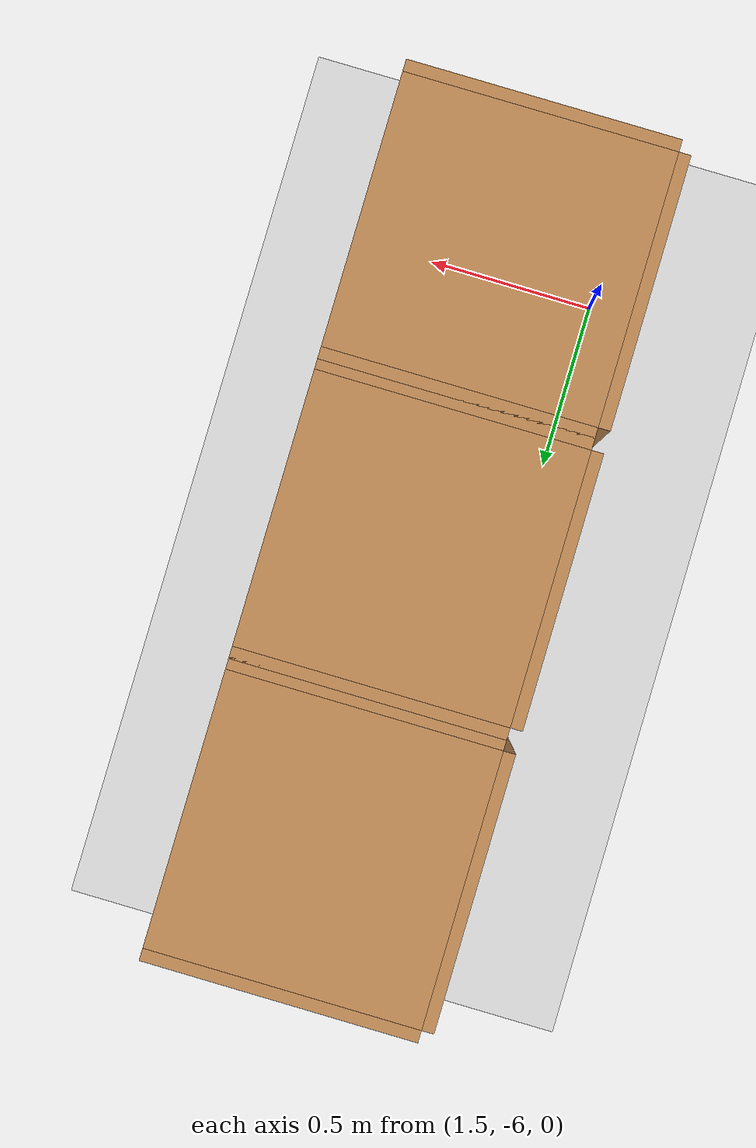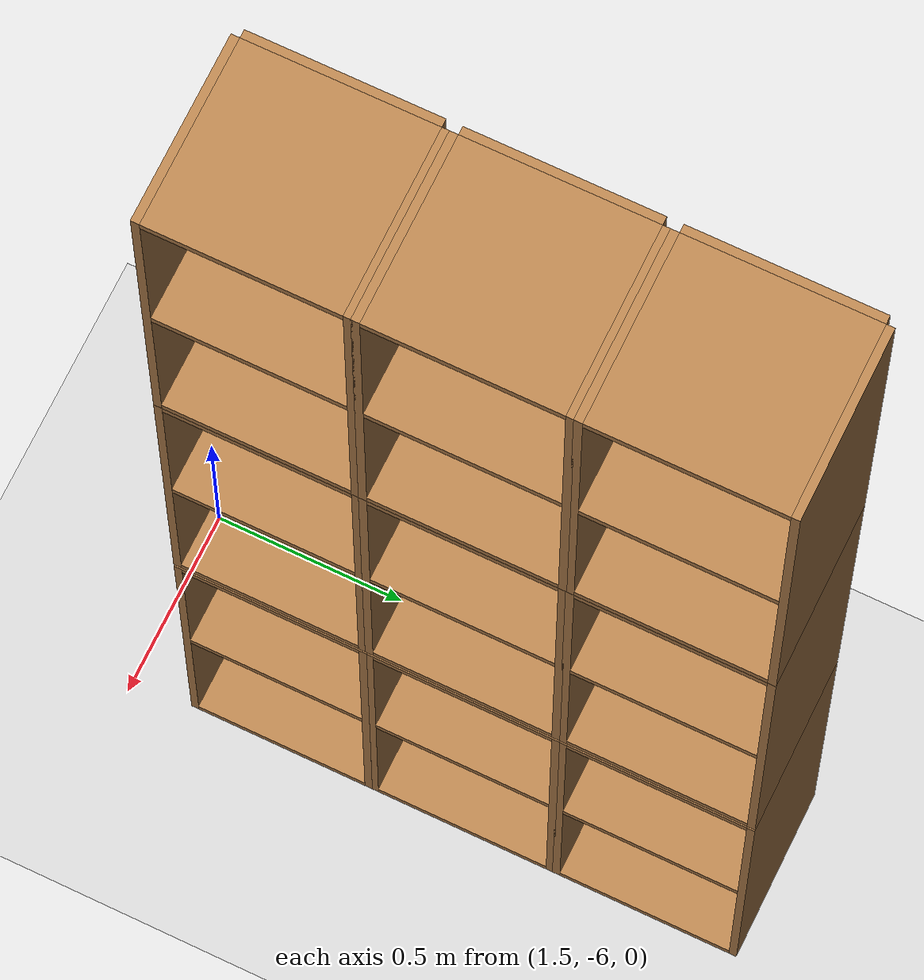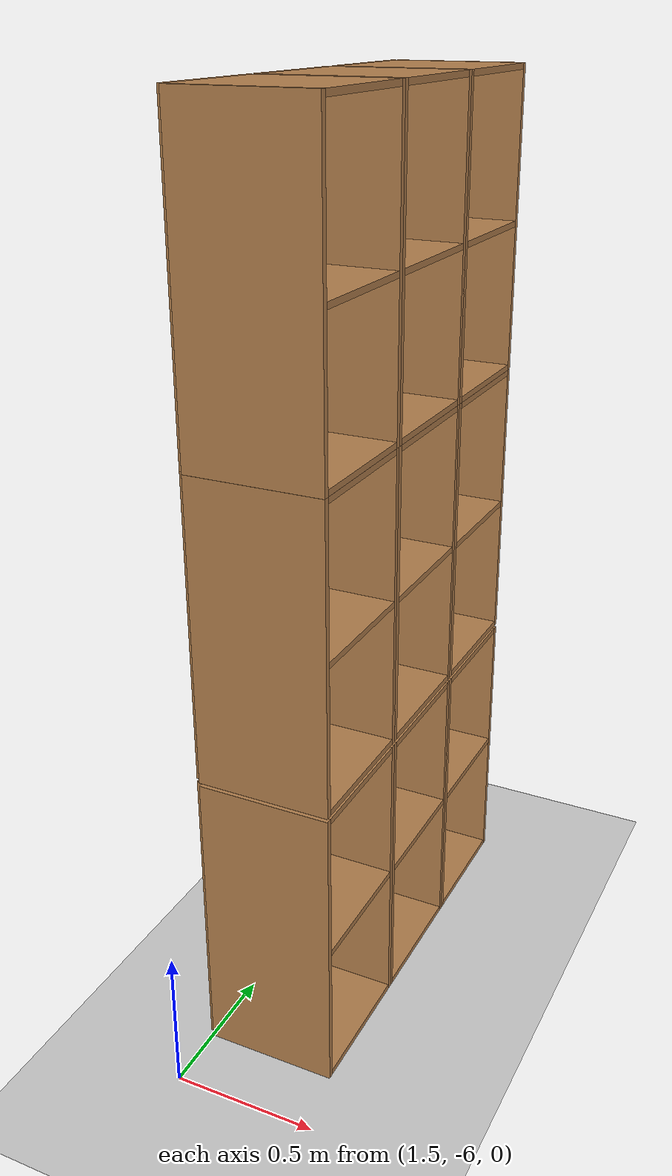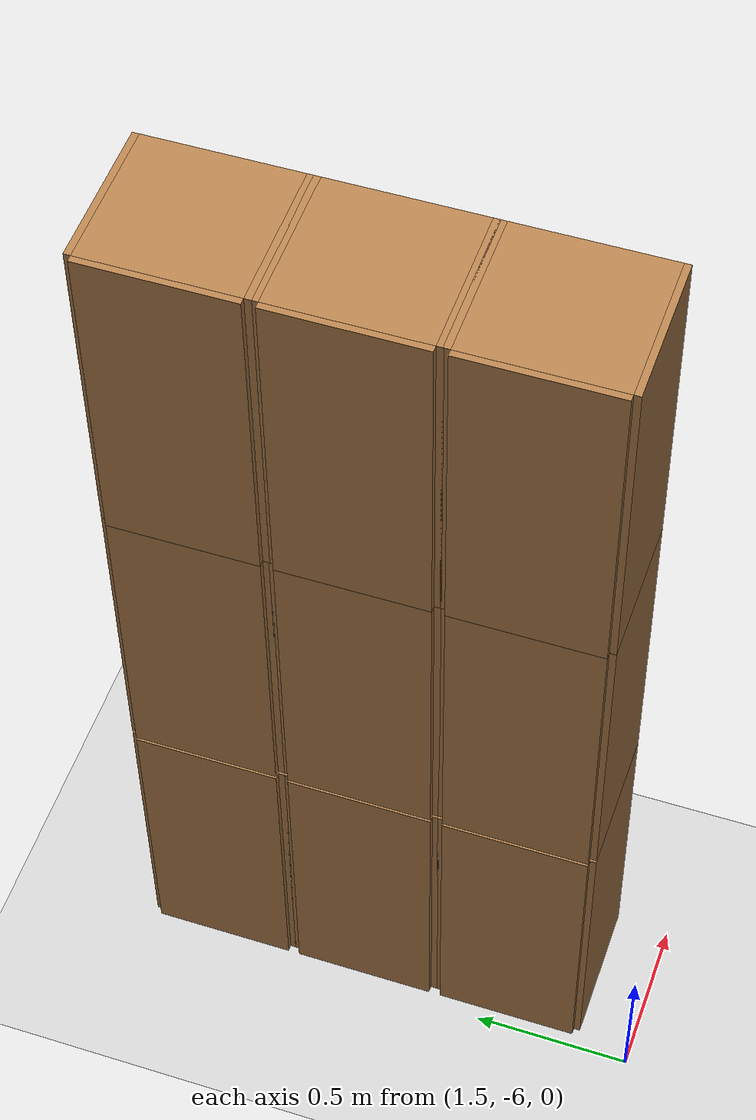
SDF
<sdf version="1.6">
 <world name="default">
  <model name="ground_plane">
   <static>1</static>
   <link name="link">
    <collision name="collision">
     <geometry><plane><normal>0 0 1</normal><size>100 100</size></plane></geometry>
     <surface>
      <contact><collide_bitmask>65535</collide_bitmask></contact>
      <friction><ode><mu>100</mu><mu2>50</mu2></ode></friction>
     </surface>
    </collision>
    <visual name="visual">
     <cast_shadows>0</cast_shadows>
     <geometry><plane><normal>0 0 1</normal><size>100 100</size></plane></geometry>
     <material>
      <script><uri>file://media/materials/scripts/gazebo.material</uri><name>Gazebo/Grey</name></script>
     </material>
    </visual>
   </link>
  </model>
  <model name="Locker18_clone_4_clone_2_clone_1_clone_clone_clone_3_clone_0">
   <model name="Locker18">
    <model name="Locker3">
     <model name="cabinet">
      <static>1</static>
      <link name="cabinet_bottom_plate">
       <inertial>
        <pose>0 0 -1 0 -0 0</pose>
        <inertia><ixx>2.05</ixx><ixy>0</ixy><ixz>0</ixz><iyy>2.05</iyy><iyz>0</iyz><izz>2.05</izz></inertia>
        <mass>25</mass>
       </inertial>
       <collision name="cabinet_bottom_plate_geom">
        <pose>0 0 0.01 0 -0 0</pose>
        <geometry><box><size>0.45 0.45 0.02</size></box></geometry>
       </collision>
       <visual name="cabinet_bottom_plate_geom_visual">
        <pose>0 0 0.01 0 -0 0</pose>
        <geometry><box><size>0.45 0.45 0.02</size></box></geometry>
        <material>
         <script><uri>file://media/materials/scripts/gazebo.material</uri><name>Gazebo/Wood</name></script>
        </material>
       </visual>
       <collision name="cabinet_bottom_plate_geom_cabinet_back_plate">
        <pose>0.235 0 0.51 0 -0 0</pose>
        <geometry><box><size>0.02 0.45 1.02</size></box></geometry>
       </collision>
       <visual name="cabinet_bottom_plate_geom_cabinet_back_plate_visual">
        <pose>0.235 0 0.51 0 -0 0</pose>
        <geometry><box><size>0.02 0.45 1.02</size></box></geometry>
        <material>
         <script><uri>file://media/materials/scripts/gazebo.material</uri><name>Gazebo/Wood</name></script>
        </material>
       </visual>
       <collision name="cabinet_bottom_plate_geom_cabinet_left_plate">
        <pose>0 0.235 0.51 0 -0 0</pose>
        <geometry><box><size>0.45 0.02 1.02</size></box></geometry>
       </collision>
       <visual name="cabinet_bottom_plate_geom_cabinet_left_plate_visual">
        <pose>0 0.235 0.51 0 -0 0</pose>
        <geometry><box><size>0.45 0.02 1.02</size></box></geometry>
        <material>
         <script><uri>file://media/materials/scripts/gazebo.material</uri><name>Gazebo/Wood</name></script>
        </material>
       </visual>
       <collision name="cabinet_bottom_plate_geom_cabinet_middle_plate">
        <pose>0 0 0.51 0 -0 0</pose>
        <geometry><box><size>0.45 0.45 0.02</size></box></geometry>
       </collision>
       <visual name="cabinet_bottom_plate_geom_cabinet_middle_plate_visual">
        <pose>0 0 0.51 0 -0 0</pose>
        <geometry><box><size>0.45 0.45 0.02</size></box></geometry>
        <material>
         <script><uri>file://media/materials/scripts/gazebo.material</uri><name>Gazebo/Wood</name></script>
        </material>
       </visual>
       <collision name="cabinet_bottom_plate_geom_cabinet_right_plate">
        <pose>0 -0.235 0.51 0 -0 0</pose>
        <geometry><box><size>0.45 0.02 1.02</size></box></geometry>
       </collision>
       <visual name="cabinet_bottom_plate_geom_cabinet_right_plate_visual">
        <pose>0 -0.235 0.51 0 -0 0</pose>
        <geometry><box><size>0.45 0.02 1.02</size></box></geometry>
        <material>
         <script><uri>file://media/materials/scripts/gazebo.material</uri><name>Gazebo/Wood</name></script>
        </material>
       </visual>
       <collision name="cabinet_bottom_plate_geom_cabinet_top_plate">
        <pose>0 0 1.01 0 -0 0</pose>
        <geometry><box><size>0.45 0.45 0.02</size></box></geometry>
       </collision>
       <visual name="cabinet_bottom_plate_geom_cabinet_top_plate_visual">
        <pose>0 0 1.01 0 -0 0</pose>
        <geometry><box><size>0.45 0.45 0.02</size></box></geometry>
        <material>
         <script><uri>file://media/materials/scripts/gazebo.material</uri><name>Gazebo/Wood</name></script>
        </material>
       </visual>
      </link>
      <pose>-0.676968 1.45758 0 0 -0 0</pose>
     </model>
     <model name="cabinet_clone">
      <static>1</static>
      <link name="cabinet_bottom_plate">
       <inertial>
        <pose>0 0 -1 0 -0 0</pose>
        <inertia><ixx>2.05</ixx><ixy>0</ixy><ixz>0</ixz><iyy>2.05</iyy><iyz>0</iyz><izz>2.05</izz></inertia>
        <mass>25</mass>
       </inertial>
       <collision name="cabinet_bottom_plate_geom">
        <pose>0 0 0.01 0 -0 0</pose>
        <geometry><box><size>0.45 0.45 0.02</size></box></geometry>
       </collision>
       <visual name="cabinet_bottom_plate_geom_visual">
        <pose>0 0 0.01 0 -0 0</pose>
        <geometry><box><size>0.45 0.45 0.02</size></box></geometry>
        <material>
         <script><uri>file://media/materials/scripts/gazebo.material</uri><name>Gazebo/Wood</name></script>
        </material>
       </visual>
       <collision name="cabinet_bottom_plate_geom_cabinet_back_plate">
        <pose>0.235 0 0.51 0 -0 0</pose>
        <geometry><box><size>0.02 0.45 1.02</size></box></geometry>
       </collision>
       <visual name="cabinet_bottom_plate_geom_cabinet_back_plate_visual">
        <pose>0.235 0 0.51 0 -0 0</pose>
        <geometry><box><size>0.02 0.45 1.02</size></box></geometry>
        <material>
         <script><uri>file://media/materials/scripts/gazebo.material</uri><name>Gazebo/Wood</name></script>
        </material>
       </visual>
       <collision name="cabinet_bottom_plate_geom_cabinet_left_plate">
        <pose>0 0.235 0.51 0 -0 0</pose>
        <geometry><box><size>0.45 0.02 1.02</size></box></geometry>
       </collision>
       <visual name="cabinet_bottom_plate_geom_cabinet_left_plate_visual">
        <pose>0 0.235 0.51 0 -0 0</pose>
        <geometry><box><size>0.45 0.02 1.02</size></box></geometry>
        <material>
         <script><uri>file://media/materials/scripts/gazebo.material</uri><name>Gazebo/Wood</name></script>
        </material>
       </visual>
       <collision name="cabinet_bottom_plate_geom_cabinet_middle_plate">
        <pose>0 0 0.51 0 -0 0</pose>
        <geometry><box><size>0.45 0.45 0.02</size></box></geometry>
       </collision>
       <visual name="cabinet_bottom_plate_geom_cabinet_middle_plate_visual">
        <pose>0 0 0.51 0 -0 0</pose>
        <geometry><box><size>0.45 0.45 0.02</size></box></geometry>
        <material>
         <script><uri>file://media/materials/scripts/gazebo.material</uri><name>Gazebo/Wood</name></script>
        </material>
       </visual>
       <collision name="cabinet_bottom_plate_geom_cabinet_right_plate">
        <pose>0 -0.235 0.51 0 -0 0</pose>
        <geometry><box><size>0.45 0.02 1.02</size></box></geometry>
       </collision>
       <visual name="cabinet_bottom_plate_geom_cabinet_right_plate_visual">
        <pose>0 -0.235 0.51 0 -0 0</pose>
        <geometry><box><size>0.45 0.02 1.02</size></box></geometry>
        <material>
         <script><uri>file://media/materials/scripts/gazebo.material</uri><name>Gazebo/Wood</name></script>
        </material>
       </visual>
       <collision name="cabinet_bottom_plate_geom_cabinet_top_plate">
        <pose>0 0 1.01 0 -0 0</pose>
        <geometry><box><size>0.45 0.45 0.02</size></box></geometry>
       </collision>
       <visual name="cabinet_bottom_plate_geom_cabinet_top_plate_visual">
        <pose>0 0 1.01 0 -0 0</pose>
        <geometry><box><size>0.45 0.45 0.02</size></box></geometry>
        <material>
         <script><uri>file://media/materials/scripts/gazebo.material</uri><name>Gazebo/Wood</name></script>
        </material>
       </visual>
      </link>
      <pose>-0.676968 0.970971 0 0 -0 0</pose>
     </model>
     <model name="cabinet_clone_0">
      <static>1</static>
      <link name="cabinet_bottom_plate">
       <inertial>
        <pose>0 0 -1 0 -0 0</pose>
        <inertia><ixx>2.05</ixx><ixy>0</ixy><ixz>0</ixz><iyy>2.05</iyy><iyz>0</iyz><izz>2.05</izz></inertia>
        <mass>25</mass>
       </inertial>
       <collision name="cabinet_bottom_plate_geom">
        <pose>0 0 0.01 0 -0 0</pose>
        <geometry><box><size>0.45 0.45 0.02</size></box></geometry>
       </collision>
       <visual name="cabinet_bottom_plate_geom_visual">
        <pose>0 0 0.01 0 -0 0</pose>
        <geometry><box><size>0.45 0.45 0.02</size></box></geometry>
        <material>
         <script><uri>file://media/materials/scripts/gazebo.material</uri><name>Gazebo/Wood</name></script>
        </material>
       </visual>
       <collision name="cabinet_bottom_plate_geom_cabinet_back_plate">
        <pose>0.235 0 0.51 0 -0 0</pose>
        <geometry><box><size>0.02 0.45 1.02</size></box></geometry>
       </collision>
       <visual name="cabinet_bottom_plate_geom_cabinet_back_plate_visual">
        <pose>0.235 0 0.51 0 -0 0</pose>
        <geometry><box><size>0.02 0.45 1.02</size></box></geometry>
        <material>
         <script><uri>file://media/materials/scripts/gazebo.material</uri><name>Gazebo/Wood</name></script>
        </material>
       </visual>
       <collision name="cabinet_bottom_plate_geom_cabinet_left_plate">
        <pose>0 0.235 0.51 0 -0 0</pose>
        <geometry><box><size>0.45 0.02 1.02</size></box></geometry>
       </collision>
       <visual name="cabinet_bottom_plate_geom_cabinet_left_plate_visual">
        <pose>0 0.235 0.51 0 -0 0</pose>
        <geometry><box><size>0.45 0.02 1.02</size></box></geometry>
        <material>
         <script><uri>file://media/materials/scripts/gazebo.material</uri><name>Gazebo/Wood</name></script>
        </material>
       </visual>
       <collision name="cabinet_bottom_plate_geom_cabinet_middle_plate">
        <pose>0 0 0.51 0 -0 0</pose>
        <geometry><box><size>0.45 0.45 0.02</size></box></geometry>
       </collision>
       <visual name="cabinet_bottom_plate_geom_cabinet_middle_plate_visual">
        <pose>0 0 0.51 0 -0 0</pose>
        <geometry><box><size>0.45 0.45 0.02</size></box></geometry>
        <material>
         <script><uri>file://media/materials/scripts/gazebo.material</uri><name>Gazebo/Wood</name></script>
        </material>
       </visual>
       <collision name="cabinet_bottom_plate_geom_cabinet_right_plate">
        <pose>0 -0.235 0.51 0 -0 0</pose>
        <geometry><box><size>0.45 0.02 1.02</size></box></geometry>
       </collision>
       <visual name="cabinet_bottom_plate_geom_cabinet_right_plate_visual">
        <pose>0 -0.235 0.51 0 -0 0</pose>
        <geometry><box><size>0.45 0.02 1.02</size></box></geometry>
        <material>
         <script><uri>file://media/materials/scripts/gazebo.material</uri><name>Gazebo/Wood</name></script>
        </material>
       </visual>
       <collision name="cabinet_bottom_plate_geom_cabinet_top_plate">
        <pose>0 0 1.01 0 -0 0</pose>
        <geometry><box><size>0.45 0.45 0.02</size></box></geometry>
       </collision>
       <visual name="cabinet_bottom_plate_geom_cabinet_top_plate_visual">
        <pose>0 0 1.01 0 -0 0</pose>
        <geometry><box><size>0.45 0.45 0.02</size></box></geometry>
        <material>
         <script><uri>file://media/materials/scripts/gazebo.material</uri><name>Gazebo/Wood</name></script>
        </material>
       </visual>
      </link>
      <pose>-0.676968 0.48391 0 0 -0 0</pose>
     </model>
     <static>0</static>
     <pose>0 3e-06 -1.02763 0 -0 0</pose>
    </model>
    <model name="Locker3_clone">
     <model name="cabinet">
      <static>1</static>
      <link name="cabinet_bottom_plate">
       <inertial>
        <pose>0 0 -1 0 -0 0</pose>
        <inertia><ixx>2.05</ixx><ixy>0</ixy><ixz>0</ixz><iyy>2.05</iyy><iyz>0</iyz><izz>2.05</izz></inertia>
        <mass>25</mass>
       </inertial>
       <collision name="cabinet_bottom_plate_geom">
        <pose>0 0 0.01 0 -0 0</pose>
        <geometry><box><size>0.45 0.45 0.02</size></box></geometry>
       </collision>
       <visual name="cabinet_bottom_plate_geom_visual">
        <pose>0 0 0.01 0 -0 0</pose>
        <geometry><box><size>0.45 0.45 0.02</size></box></geometry>
        <material>
         <script><uri>file://media/materials/scripts/gazebo.material</uri><name>Gazebo/Wood</name></script>
        </material>
       </visual>
       <collision name="cabinet_bottom_plate_geom_cabinet_back_plate">
        <pose>0.235 0 0.51 0 -0 0</pose>
        <geometry><box><size>0.02 0.45 1.02</size></box></geometry>
       </collision>
       <visual name="cabinet_bottom_plate_geom_cabinet_back_plate_visual">
        <pose>0.235 0 0.51 0 -0 0</pose>
        <geometry><box><size>0.02 0.45 1.02</size></box></geometry>
        <material>
         <script><uri>file://media/materials/scripts/gazebo.material</uri><name>Gazebo/Wood</name></script>
        </material>
       </visual>
       <collision name="cabinet_bottom_plate_geom_cabinet_left_plate">
        <pose>0 0.235 0.51 0 -0 0</pose>
        <geometry><box><size>0.45 0.02 1.02</size></box></geometry>
       </collision>
       <visual name="cabinet_bottom_plate_geom_cabinet_left_plate_visual">
        <pose>0 0.235 0.51 0 -0 0</pose>
        <geometry><box><size>0.45 0.02 1.02</size></box></geometry>
        <material>
         <script><uri>file://media/materials/scripts/gazebo.material</uri><name>Gazebo/Wood</name></script>
        </material>
       </visual>
       <collision name="cabinet_bottom_plate_geom_cabinet_middle_plate">
        <pose>0 0 0.51 0 -0 0</pose>
        <geometry><box><size>0.45 0.45 0.02</size></box></geometry>
       </collision>
       <visual name="cabinet_bottom_plate_geom_cabinet_middle_plate_visual">
        <pose>0 0 0.51 0 -0 0</pose>
        <geometry><box><size>0.45 0.45 0.02</size></box></geometry>
        <material>
         <script><uri>file://media/materials/scripts/gazebo.material</uri><name>Gazebo/Wood</name></script>
        </material>
       </visual>
       <collision name="cabinet_bottom_plate_geom_cabinet_right_plate">
        <pose>0 -0.235 0.51 0 -0 0</pose>
        <geometry><box><size>0.45 0.02 1.02</size></box></geometry>
       </collision>
       <visual name="cabinet_bottom_plate_geom_cabinet_right_plate_visual">
        <pose>0 -0.235 0.51 0 -0 0</pose>
        <geometry><box><size>0.45 0.02 1.02</size></box></geometry>
        <material>
         <script><uri>file://media/materials/scripts/gazebo.material</uri><name>Gazebo/Wood</name></script>
        </material>
       </visual>
       <collision name="cabinet_bottom_plate_geom_cabinet_top_plate">
        <pose>0 0 1.01 0 -0 0</pose>
        <geometry><box><size>0.45 0.45 0.02</size></box></geometry>
       </collision>
       <visual name="cabinet_bottom_plate_geom_cabinet_top_plate_visual">
        <pose>0 0 1.01 0 -0 0</pose>
        <geometry><box><size>0.45 0.45 0.02</size></box></geometry>
        <material>
         <script><uri>file://media/materials/scripts/gazebo.material</uri><name>Gazebo/Wood</name></script>
        </material>
       </visual>
      </link>
      <pose>-0.676968 1.45758 0 0 -0 0</pose>
     </model>
     <model name="cabinet_clone">
      <static>1</static>
      <link name="cabinet_bottom_plate">
       <inertial>
        <pose>0 0 -1 0 -0 0</pose>
        <inertia><ixx>2.05</ixx><ixy>0</ixy><ixz>0</ixz><iyy>2.05</iyy><iyz>0</iyz><izz>2.05</izz></inertia>
        <mass>25</mass>
       </inertial>
       <collision name="cabinet_bottom_plate_geom">
        <pose>0 0 0.01 0 -0 0</pose>
        <geometry><box><size>0.45 0.45 0.02</size></box></geometry>
       </collision>
       <visual name="cabinet_bottom_plate_geom_visual">
        <pose>0 0 0.01 0 -0 0</pose>
        <geometry><box><size>0.45 0.45 0.02</size></box></geometry>
        <material>
         <script><uri>file://media/materials/scripts/gazebo.material</uri><name>Gazebo/Wood</name></script>
        </material>
       </visual>
       <collision name="cabinet_bottom_plate_geom_cabinet_back_plate">
        <pose>0.235 0 0.51 0 -0 0</pose>
        <geometry><box><size>0.02 0.45 1.02</size></box></geometry>
       </collision>
       <visual name="cabinet_bottom_plate_geom_cabinet_back_plate_visual">
        <pose>0.235 0 0.51 0 -0 0</pose>
        <geometry><box><size>0.02 0.45 1.02</size></box></geometry>
        <material>
         <script><uri>file://media/materials/scripts/gazebo.material</uri><name>Gazebo/Wood</name></script>
        </material>
       </visual>
       <collision name="cabinet_bottom_plate_geom_cabinet_left_plate">
        <pose>0 0.235 0.51 0 -0 0</pose>
        <geometry><box><size>0.45 0.02 1.02</size></box></geometry>
       </collision>
       <visual name="cabinet_bottom_plate_geom_cabinet_left_plate_visual">
        <pose>0 0.235 0.51 0 -0 0</pose>
        <geometry><box><size>0.45 0.02 1.02</size></box></geometry>
        <material>
         <script><uri>file://media/materials/scripts/gazebo.material</uri><name>Gazebo/Wood</name></script>
        </material>
       </visual>
       <collision name="cabinet_bottom_plate_geom_cabinet_middle_plate">
        <pose>0 0 0.51 0 -0 0</pose>
        <geometry><box><size>0.45 0.45 0.02</size></box></geometry>
       </collision>
       <visual name="cabinet_bottom_plate_geom_cabinet_middle_plate_visual">
        <pose>0 0 0.51 0 -0 0</pose>
        <geometry><box><size>0.45 0.45 0.02</size></box></geometry>
        <material>
         <script><uri>file://media/materials/scripts/gazebo.material</uri><name>Gazebo/Wood</name></script>
        </material>
       </visual>
       <collision name="cabinet_bottom_plate_geom_cabinet_right_plate">
        <pose>0 -0.235 0.51 0 -0 0</pose>
        <geometry><box><size>0.45 0.02 1.02</size></box></geometry>
       </collision>
       <visual name="cabinet_bottom_plate_geom_cabinet_right_plate_visual">
        <pose>0 -0.235 0.51 0 -0 0</pose>
        <geometry><box><size>0.45 0.02 1.02</size></box></geometry>
        <material>
         <script><uri>file://media/materials/scripts/gazebo.material</uri><name>Gazebo/Wood</name></script>
        </material>
       </visual>
       <collision name="cabinet_bottom_plate_geom_cabinet_top_plate">
        <pose>0 0 1.01 0 -0 0</pose>
        <geometry><box><size>0.45 0.45 0.02</size></box></geometry>
       </collision>
       <visual name="cabinet_bottom_plate_geom_cabinet_top_plate_visual">
        <pose>0 0 1.01 0 -0 0</pose>
        <geometry><box><size>0.45 0.45 0.02</size></box></geometry>
        <material>
         <script><uri>file://media/materials/scripts/gazebo.material</uri><name>Gazebo/Wood</name></script>
        </material>
       </visual>
      </link>
      <pose>-0.676968 0.970971 0 0 -0 0</pose>
     </model>
     <model name="cabinet_clone_0">
      <static>1</static>
      <link name="cabinet_bottom_plate">
       <inertial>
        <pose>0 0 -1 0 -0 0</pose>
        <inertia><ixx>2.05</ixx><ixy>0</ixy><ixz>0</ixz><iyy>2.05</iyy><iyz>0</iyz><izz>2.05</izz></inertia>
        <mass>25</mass>
       </inertial>
       <collision name="cabinet_bottom_plate_geom">
        <pose>0 0 0.01 0 -0 0</pose>
        <geometry><box><size>0.45 0.45 0.02</size></box></geometry>
       </collision>
       <visual name="cabinet_bottom_plate_geom_visual">
        <pose>0 0 0.01 0 -0 0</pose>
        <geometry><box><size>0.45 0.45 0.02</size></box></geometry>
        <material>
         <script><uri>file://media/materials/scripts/gazebo.material</uri><name>Gazebo/Wood</name></script>
        </material>
       </visual>
       <collision name="cabinet_bottom_plate_geom_cabinet_back_plate">
        <pose>0.235 0 0.51 0 -0 0</pose>
        <geometry><box><size>0.02 0.45 1.02</size></box></geometry>
       </collision>
       <visual name="cabinet_bottom_plate_geom_cabinet_back_plate_visual">
        <pose>0.235 0 0.51 0 -0 0</pose>
        <geometry><box><size>0.02 0.45 1.02</size></box></geometry>
        <material>
         <script><uri>file://media/materials/scripts/gazebo.material</uri><name>Gazebo/Wood</name></script>
        </material>
       </visual>
       <collision name="cabinet_bottom_plate_geom_cabinet_left_plate">
        <pose>0 0.235 0.51 0 -0 0</pose>
        <geometry><box><size>0.45 0.02 1.02</size></box></geometry>
       </collision>
       <visual name="cabinet_bottom_plate_geom_cabinet_left_plate_visual">
        <pose>0 0.235 0.51 0 -0 0</pose>
        <geometry><box><size>0.45 0.02 1.02</size></box></geometry>
        <material>
         <script><uri>file://media/materials/scripts/gazebo.material</uri><name>Gazebo/Wood</name></script>
        </material>
       </visual>
       <collision name="cabinet_bottom_plate_geom_cabinet_middle_plate">
        <pose>0 0 0.51 0 -0 0</pose>
        <geometry><box><size>0.45 0.45 0.02</size></box></geometry>
       </collision>
       <visual name="cabinet_bottom_plate_geom_cabinet_middle_plate_visual">
        <pose>0 0 0.51 0 -0 0</pose>
        <geometry><box><size>0.45 0.45 0.02</size></box></geometry>
        <material>
         <script><uri>file://media/materials/scripts/gazebo.material</uri><name>Gazebo/Wood</name></script>
        </material>
       </visual>
       <collision name="cabinet_bottom_plate_geom_cabinet_right_plate">
        <pose>0 -0.235 0.51 0 -0 0</pose>
        <geometry><box><size>0.45 0.02 1.02</size></box></geometry>
       </collision>
       <visual name="cabinet_bottom_plate_geom_cabinet_right_plate_visual">
        <pose>0 -0.235 0.51 0 -0 0</pose>
        <geometry><box><size>0.45 0.02 1.02</size></box></geometry>
        <material>
         <script><uri>file://media/materials/scripts/gazebo.material</uri><name>Gazebo/Wood</name></script>
        </material>
       </visual>
       <collision name="cabinet_bottom_plate_geom_cabinet_top_plate">
        <pose>0 0 1.01 0 -0 0</pose>
        <geometry><box><size>0.45 0.45 0.02</size></box></geometry>
       </collision>
       <visual name="cabinet_bottom_plate_geom_cabinet_top_plate_visual">
        <pose>0 0 1.01 0 -0 0</pose>
        <geometry><box><size>0.45 0.45 0.02</size></box></geometry>
        <material>
         <script><uri>file://media/materials/scripts/gazebo.material</uri><name>Gazebo/Wood</name></script>
        </material>
       </visual>
      </link>
      <pose>-0.676968 0.48391 0 0 -0 0</pose>
     </model>
     <static>0</static>
     <pose>0 3e-06 0.003717 0 -0 0</pose>
    </model>
    <model name="Locker3_clone_clone">
     <model name="cabinet">
      <static>1</static>
      <link name="cabinet_bottom_plate">
       <inertial>
        <pose>0 0 -1 0 -0 0</pose>
        <inertia><ixx>2.05</ixx><ixy>0</ixy><ixz>0</ixz><iyy>2.05</iyy><iyz>0</iyz><izz>2.05</izz></inertia>
        <mass>25</mass>
       </inertial>
       <collision name="cabinet_bottom_plate_geom">
        <pose>0 0 0.01 0 -0 0</pose>
        <geometry><box><size>0.45 0.45 0.02</size></box></geometry>
       </collision>
       <visual name="cabinet_bottom_plate_geom_visual">
        <pose>0 0 0.01 0 -0 0</pose>
        <geometry><box><size>0.45 0.45 0.02</size></box></geometry>
        <material>
         <script><uri>file://media/materials/scripts/gazebo.material</uri><name>Gazebo/Wood</name></script>
        </material>
       </visual>
       <collision name="cabinet_bottom_plate_geom_cabinet_back_plate">
        <pose>0.235 0 0.51 0 -0 0</pose>
        <geometry><box><size>0.02 0.45 1.02</size></box></geometry>
       </collision>
       <visual name="cabinet_bottom_plate_geom_cabinet_back_plate_visual">
        <pose>0.235 0 0.51 0 -0 0</pose>
        <geometry><box><size>0.02 0.45 1.02</size></box></geometry>
        <material>
         <script><uri>file://media/materials/scripts/gazebo.material</uri><name>Gazebo/Wood</name></script>
        </material>
       </visual>
       <collision name="cabinet_bottom_plate_geom_cabinet_left_plate">
        <pose>0 0.235 0.51 0 -0 0</pose>
        <geometry><box><size>0.45 0.02 1.02</size></box></geometry>
       </collision>
       <visual name="cabinet_bottom_plate_geom_cabinet_left_plate_visual">
        <pose>0 0.235 0.51 0 -0 0</pose>
        <geometry><box><size>0.45 0.02 1.02</size></box></geometry>
        <material>
         <script><uri>file://media/materials/scripts/gazebo.material</uri><name>Gazebo/Wood</name></script>
        </material>
       </visual>
       <collision name="cabinet_bottom_plate_geom_cabinet_middle_plate">
        <pose>0 0 0.51 0 -0 0</pose>
        <geometry><box><size>0.45 0.45 0.02</size></box></geometry>
       </collision>
       <visual name="cabinet_bottom_plate_geom_cabinet_middle_plate_visual">
        <pose>0 0 0.51 0 -0 0</pose>
        <geometry><box><size>0.45 0.45 0.02</size></box></geometry>
        <material>
         <script><uri>file://media/materials/scripts/gazebo.material</uri><name>Gazebo/Wood</name></script>
        </material>
       </visual>
       <collision name="cabinet_bottom_plate_geom_cabinet_right_plate">
        <pose>0 -0.235 0.51 0 -0 0</pose>
        <geometry><box><size>0.45 0.02 1.02</size></box></geometry>
       </collision>
       <visual name="cabinet_bottom_plate_geom_cabinet_right_plate_visual">
        <pose>0 -0.235 0.51 0 -0 0</pose>
        <geometry><box><size>0.45 0.02 1.02</size></box></geometry>
        <material>
         <script><uri>file://media/materials/scripts/gazebo.material</uri><name>Gazebo/Wood</name></script>
        </material>
       </visual>
       <collision name="cabinet_bottom_plate_geom_cabinet_top_plate">
        <pose>0 0 1.01 0 -0 0</pose>
        <geometry><box><size>0.45 0.45 0.02</size></box></geometry>
       </collision>
       <visual name="cabinet_bottom_plate_geom_cabinet_top_plate_visual">
        <pose>0 0 1.01 0 -0 0</pose>
        <geometry><box><size>0.45 0.45 0.02</size></box></geometry>
        <material>
         <script><uri>file://media/materials/scripts/gazebo.material</uri><name>Gazebo/Wood</name></script>
        </material>
       </visual>
      </link>
      <pose>-0.676968 1.45758 0 0 -0 0</pose>
     </model>
     <model name="cabinet_clone">
      <static>1</static>
      <link name="cabinet_bottom_plate">
       <inertial>
        <pose>0 0 -1 0 -0 0</pose>
        <inertia><ixx>2.05</ixx><ixy>0</ixy><ixz>0</ixz><iyy>2.05</iyy><iyz>0</iyz><izz>2.05</izz></inertia>
        <mass>25</mass>
       </inertial>
       <collision name="cabinet_bottom_plate_geom">
        <pose>0 0 0.01 0 -0 0</pose>
        <geometry><box><size>0.45 0.45 0.02</size></box></geometry>
       </collision>
       <visual name="cabinet_bottom_plate_geom_visual">
        <pose>0 0 0.01 0 -0 0</pose>
        <geometry><box><size>0.45 0.45 0.02</size></box></geometry>
        <material>
         <script><uri>file://media/materials/scripts/gazebo.material</uri><name>Gazebo/Wood</name></script>
        </material>
       </visual>
       <collision name="cabinet_bottom_plate_geom_cabinet_back_plate">
        <pose>0.235 0 0.51 0 -0 0</pose>
        <geometry><box><size>0.02 0.45 1.02</size></box></geometry>
       </collision>
       <visual name="cabinet_bottom_plate_geom_cabinet_back_plate_visual">
        <pose>0.235 0 0.51 0 -0 0</pose>
        <geometry><box><size>0.02 0.45 1.02</size></box></geometry>
        <material>
         <script><uri>file://media/materials/scripts/gazebo.material</uri><name>Gazebo/Wood</name></script>
        </material>
       </visual>
       <collision name="cabinet_bottom_plate_geom_cabinet_left_plate">
        <pose>0 0.235 0.51 0 -0 0</pose>
        <geometry><box><size>0.45 0.02 1.02</size></box></geometry>
       </collision>
       <visual name="cabinet_bottom_plate_geom_cabinet_left_plate_visual">
        <pose>0 0.235 0.51 0 -0 0</pose>
        <geometry><box><size>0.45 0.02 1.02</size></box></geometry>
        <material>
         <script><uri>file://media/materials/scripts/gazebo.material</uri><name>Gazebo/Wood</name></script>
        </material>
       </visual>
       <collision name="cabinet_bottom_plate_geom_cabinet_middle_plate">
        <pose>0 0 0.51 0 -0 0</pose>
        <geometry><box><size>0.45 0.45 0.02</size></box></geometry>
       </collision>
       <visual name="cabinet_bottom_plate_geom_cabinet_middle_plate_visual">
        <pose>0 0 0.51 0 -0 0</pose>
        <geometry><box><size>0.45 0.45 0.02</size></box></geometry>
        <material>
         <script><uri>file://media/materials/scripts/gazebo.material</uri><name>Gazebo/Wood</name></script>
        </material>
       </visual>
       <collision name="cabinet_bottom_plate_geom_cabinet_right_plate">
        <pose>0 -0.235 0.51 0 -0 0</pose>
        <geometry><box><size>0.45 0.02 1.02</size></box></geometry>
       </collision>
       <visual name="cabinet_bottom_plate_geom_cabinet_right_plate_visual">
        <pose>0 -0.235 0.51 0 -0 0</pose>
        <geometry><box><size>0.45 0.02 1.02</size></box></geometry>
        <material>
         <script><uri>file://media/materials/scripts/gazebo.material</uri><name>Gazebo/Wood</name></script>
        </material>
       </visual>
       <collision name="cabinet_bottom_plate_geom_cabinet_top_plate">
        <pose>0 0 1.01 0 -0 0</pose>
        <geometry><box><size>0.45 0.45 0.02</size></box></geometry>
       </collision>
       <visual name="cabinet_bottom_plate_geom_cabinet_top_plate_visual">
        <pose>0 0 1.01 0 -0 0</pose>
        <geometry><box><size>0.45 0.45 0.02</size></box></geometry>
        <material>
         <script><uri>file://media/materials/scripts/gazebo.material</uri><name>Gazebo/Wood</name></script>
        </material>
       </visual>
      </link>
      <pose>-0.676968 0.970971 0 0 -0 0</pose>
     </model>
     <model name="cabinet_clone_0">
      <static>1</static>
      <link name="cabinet_bottom_plate">
       <inertial>
        <pose>0 0 -1 0 -0 0</pose>
        <inertia><ixx>2.05</ixx><ixy>0</ixy><ixz>0</ixz><iyy>2.05</iyy><iyz>0</iyz><izz>2.05</izz></inertia>
        <mass>25</mass>
       </inertial>
       <collision name="cabinet_bottom_plate_geom">
        <pose>0 0 0.01 0 -0 0</pose>
        <geometry><box><size>0.45 0.45 0.02</size></box></geometry>
       </collision>
       <visual name="cabinet_bottom_plate_geom_visual">
        <pose>0 0 0.01 0 -0 0</pose>
        <geometry><box><size>0.45 0.45 0.02</size></box></geometry>
        <material>
         <script><uri>file://media/materials/scripts/gazebo.material</uri><name>Gazebo/Wood</name></script>
        </material>
       </visual>
       <collision name="cabinet_bottom_plate_geom_cabinet_back_plate">
        <pose>0.235 0 0.51 0 -0 0</pose>
        <geometry><box><size>0.02 0.45 1.02</size></box></geometry>
       </collision>
       <visual name="cabinet_bottom_plate_geom_cabinet_back_plate_visual">
        <pose>0.235 0 0.51 0 -0 0</pose>
        <geometry><box><size>0.02 0.45 1.02</size></box></geometry>
        <material>
         <script><uri>file://media/materials/scripts/gazebo.material</uri><name>Gazebo/Wood</name></script>
        </material>
       </visual>
       <collision name="cabinet_bottom_plate_geom_cabinet_left_plate">
        <pose>0 0.235 0.51 0 -0 0</pose>
        <geometry><box><size>0.45 0.02 1.02</size></box></geometry>
       </collision>
       <visual name="cabinet_bottom_plate_geom_cabinet_left_plate_visual">
        <pose>0 0.235 0.51 0 -0 0</pose>
        <geometry><box><size>0.45 0.02 1.02</size></box></geometry>
        <material>
         <script><uri>file://media/materials/scripts/gazebo.material</uri><name>Gazebo/Wood</name></script>
        </material>
       </visual>
       <collision name="cabinet_bottom_plate_geom_cabinet_middle_plate">
        <pose>0 0 0.51 0 -0 0</pose>
        <geometry><box><size>0.45 0.45 0.02</size></box></geometry>
       </collision>
       <visual name="cabinet_bottom_plate_geom_cabinet_middle_plate_visual">
        <pose>0 0 0.51 0 -0 0</pose>
        <geometry><box><size>0.45 0.45 0.02</size></box></geometry>
        <material>
         <script><uri>file://media/materials/scripts/gazebo.material</uri><name>Gazebo/Wood</name></script>
        </material>
       </visual>
       <collision name="cabinet_bottom_plate_geom_cabinet_right_plate">
        <pose>0 -0.235 0.51 0 -0 0</pose>
        <geometry><box><size>0.45 0.02 1.02</size></box></geometry>
       </collision>
       <visual name="cabinet_bottom_plate_geom_cabinet_right_plate_visual">
        <pose>0 -0.235 0.51 0 -0 0</pose>
        <geometry><box><size>0.45 0.02 1.02</size></box></geometry>
        <material>
         <script><uri>file://media/materials/scripts/gazebo.material</uri><name>Gazebo/Wood</name></script>
        </material>
       </visual>
       <collision name="cabinet_bottom_plate_geom_cabinet_top_plate">
        <pose>0 0 1.01 0 -0 0</pose>
        <geometry><box><size>0.45 0.45 0.02</size></box></geometry>
       </collision>
       <visual name="cabinet_bottom_plate_geom_cabinet_top_plate_visual">
        <pose>0 0 1.01 0 -0 0</pose>
        <geometry><box><size>0.45 0.45 0.02</size></box></geometry>
        <material>
         <script><uri>file://media/materials/scripts/gazebo.material</uri><name>Gazebo/Wood</name></script>
        </material>
       </visual>
      </link>
      <pose>-0.676968 0.48391 0 0 -0 0</pose>
     </model>
     <static>0</static>
     <pose>0 3e-06 1.02391 0 -0 0</pose>
    </model>
    <static>0</static>
    <pose>-0 4e-06 4e-06 0 -0 0</pose>
   </model>
   <static>0</static>
   <pose>1.08178 -4.12985 1.08672 0 -0 3.14119</pose>
  </model>
 </world>
</sdf>
